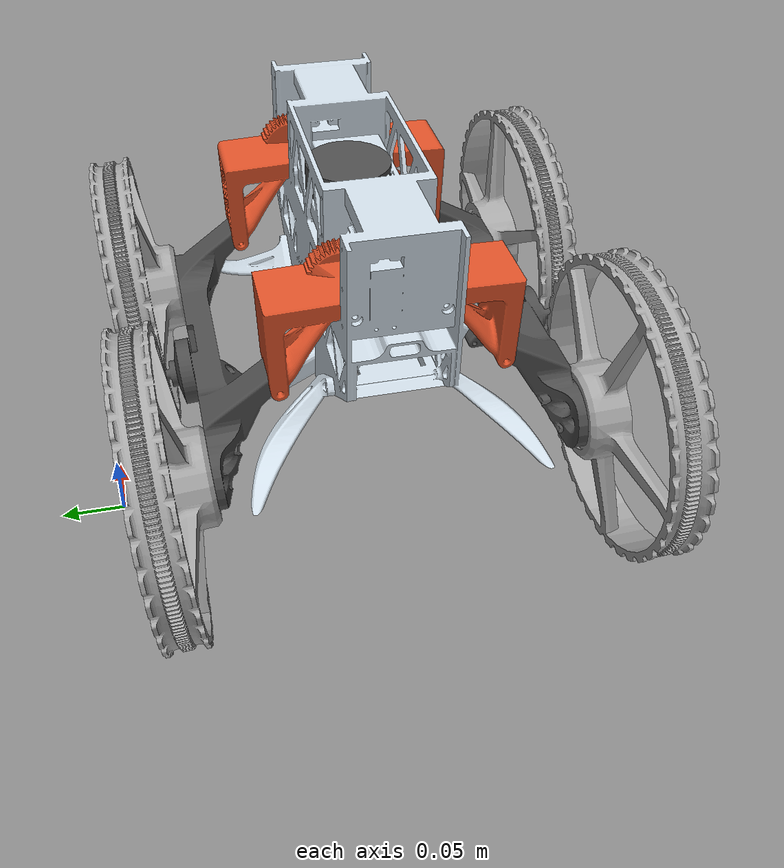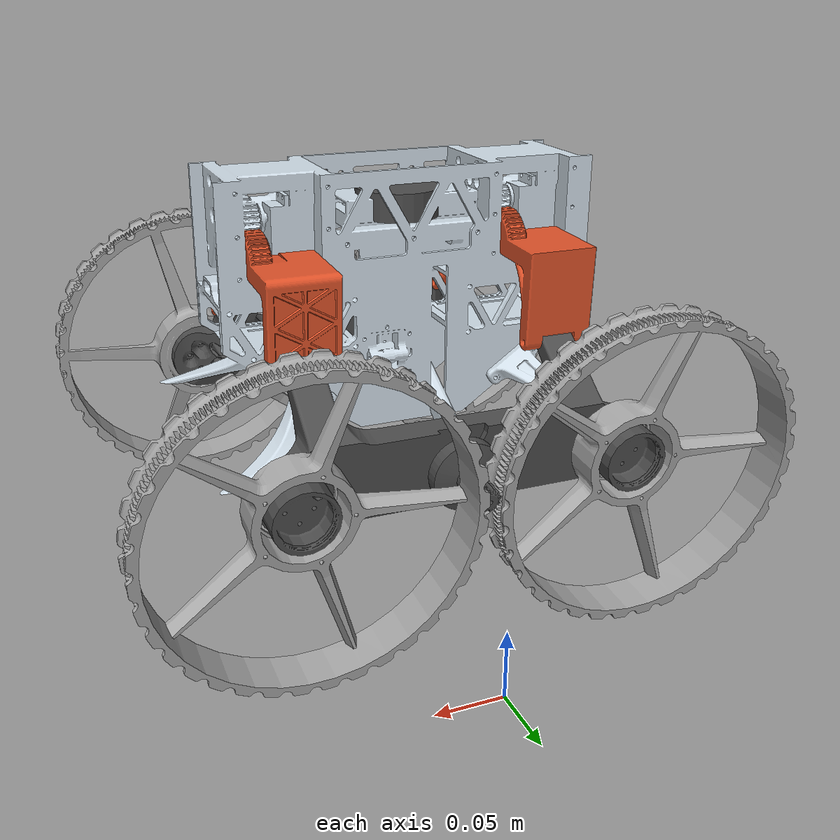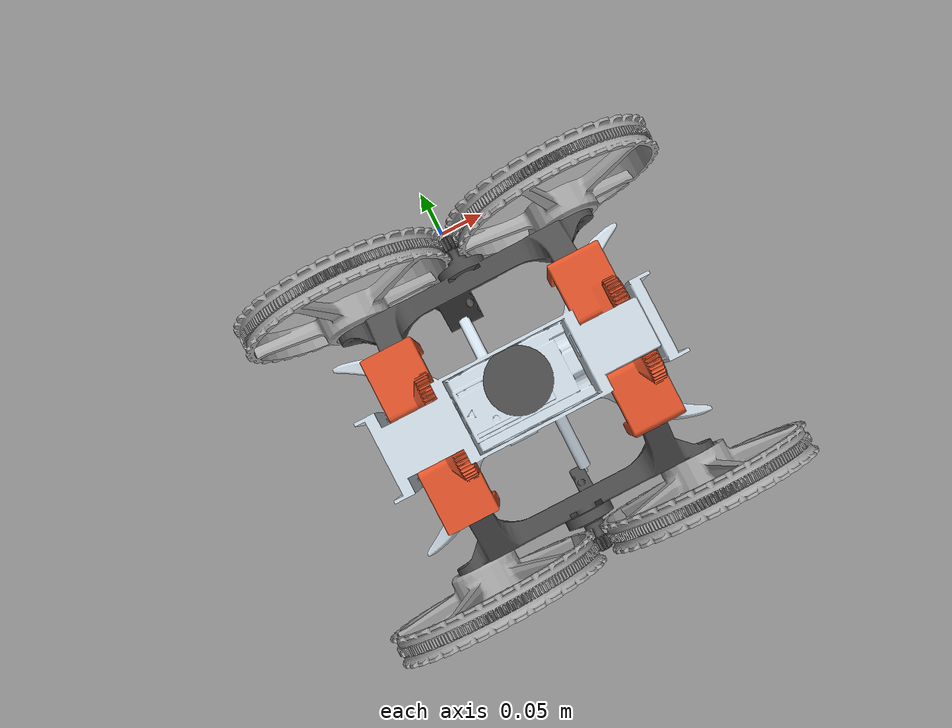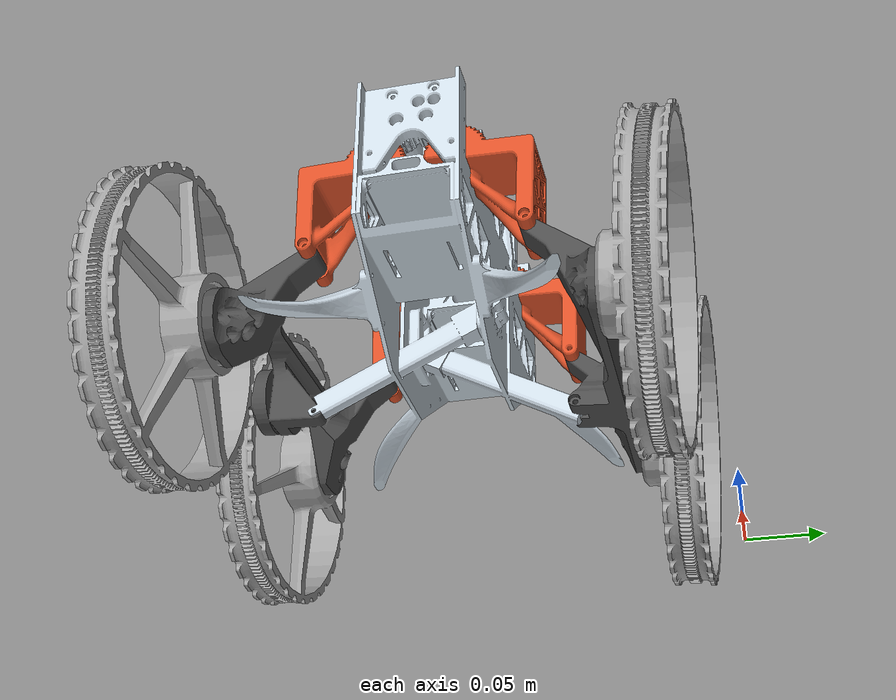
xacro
<?xml version="1.0"?>
<robot xmlns:xacro="http://ros.org/wiki/xacro" name="drobot">

  <xacro:include filename="$(find drobot_description)/urdf/gazebo.xacro"/>

  <xacro:arg name="use_sim" default="true"/>
  <xacro:arg name="use_ros2_control" default="true"/>

  <!-- ==================== MATERIALS ==================== -->
  <material name="base_color"><color rgba="0.81 0.86 0.90 1"/></material>
  <material name="arm_color"><color rgba="0.87 0.32 0.16 1"/></material>
  <material name="frame_color"><color rgba="0.30 0.30 0.30 1"/></material>
  <material name="wheel_color"><color rgba="0.65 0.65 0.65 1"/></material>

  <!-- ==================== BASE ==================== -->
  <link name="base_footprint"/>

  <joint name="base_footprint_joint" type="fixed">
    <parent link="base_footprint"/>
    <child link="base_link"/>
    <!-- z offset: base_footprint(지면)에서 base_link까지 높이 -->
    <origin xyz="0 0 0.25" rpy="0 0 0"/>
  </joint>

  <link name="base_link">
    <inertial>
      <origin xyz="-0.0023939 -0.19657 -0.0067497" rpy="0 0 0"/>
      <mass value="0.89777"/>
      <inertia ixx="0.00089357" ixy="-7.3792e-08" ixz="-3.1542e-05"
               iyy="0.0017315" iyz="7.3533e-07" izz="0.0014439"/>
    </inertial>
    <visual>
      <origin xyz="0 0 0" rpy="0 0 0"/>
      <geometry>
        <mesh filename="package://drobot_description/meshes/base_link.STL"/>
      </geometry>
      <material name="base_color"/>
    </visual>
    <collision>
      <origin xyz="0 0 0" rpy="0 0 0"/>
      <geometry>
        <mesh filename="package://drobot_description/meshes/base_link.STL"/>
      </geometry>
    </collision>
  </link>

  <!-- ==================== LEFT FRONT ARM ==================== -->
  <!-- FIX: mass was 0, set to 0.05 with minimal inertia -->
  <link name="left_front_arm">
    <inertial>
      <origin xyz="-0.001 -0.21577 0.2403" rpy="0 0 0"/>
      <mass value="0.05"/>
      <inertia ixx="1e-04" ixy="0" ixz="0"
               iyy="1e-04" iyz="0" izz="1e-04"/>
    </inertial>
    <visual>
      <origin xyz="0 0 0" rpy="0 0 0"/>
      <geometry>
        <mesh filename="package://drobot_description/meshes/left_front_arm.STL"/>
      </geometry>
      <material name="arm_color"/>
    </visual>
  </link>

  <joint name="rev_lf_arm" type="revolute">
    <origin xyz="0.001 -0.22031 0.23615" rpy="-3.1225 0 0"/>
    <parent link="base_link"/>
    <child link="left_front_arm"/>
    <axis xyz="-1 0 0"/>
    <limit lower="0" upper="1.5708" effort="100" velocity="2.0"/>
    <dynamics damping="100.0" friction="1.0"/>
  </joint>

  <!-- ==================== LEFT SIDE FRAME ==================== -->
  <link name="left_side_frame">
    <inertial>
      <origin xyz="0.00014502 0.10634 0.33395" rpy="0 0 0"/>
      <mass value="0.27356"/>
      <inertia ixx="0.00017455" ixy="1.6016e-06" ixz="-1.7253e-06"
               iyy="0.0022493" iyz="-5.3889e-05" izz="0.0022114"/>
    </inertial>
    <visual>
      <origin xyz="0 0 0" rpy="0 0 0"/>
      <geometry>
        <mesh filename="package://drobot_description/meshes/left_side_frame.STL"/>
      </geometry>
      <material name="frame_color"/>
    </visual>
  </link>

  <joint name="fix_ls_frame" type="fixed">
    <origin xyz="0.0005 -0.01671 0.0040219" rpy="-0.058822 0 0"/>
    <parent link="left_front_arm"/>
    <child link="left_side_frame"/>
  </joint>

  <!-- ==================== LEFT FRONT WHEEL ==================== -->
  <link name="left_front_wheel">
    <inertial>
      <origin xyz="0 0 0" rpy="0 0 0"/>
      <mass value="0.17861"/>
      <inertia ixx="0.00061079" ixy="0" ixz="0"
               iyy="0.00061079" iyz="0" izz="0.0011712"/>
    </inertial>
    <visual>
      <origin xyz="0.11656 0 -0.024937" rpy="0 0 0"/>
      <geometry>
        <mesh filename="package://drobot_description/meshes/left_front_wheel.STL"/>
      </geometry>
      <material name="wheel_color"/>
    </visual>
    <collision>
      <origin xyz="0.11656 0 -0.024937" rpy="0 0 0"/>
      <geometry>
        <mesh filename="package://drobot_description/meshes/left_front_wheel.STL"/>
      </geometry>
    </collision>
  </link>

  <!-- FIX: axis flipped to 0,0,-1 so left wheels match right wheels in base_link frame -->
  <joint name="con_lf_wheel" type="continuous">
    <origin xyz="-0.11657 0.14106 0.34600" rpy="-1.5708 -1.2933 3.1416"/>
    <parent link="left_side_frame"/>
    <child link="left_front_wheel"/>
    <axis xyz="0 0 -1"/>
    <dynamics damping="0.1" friction="0.05"/>
  </joint>

  <!-- ==================== LEFT REAR WHEEL ==================== -->
  <link name="left_rear_wheel">
    <inertial>
      <origin xyz="0 0 0" rpy="0 0 0"/>
      <mass value="0.17645"/>
      <inertia ixx="0.00060815" ixy="0" ixz="0"
               iyy="0.00060815" iyz="0" izz="0.0011693"/>
    </inertial>
    <visual>
      <origin xyz="-0.11656 0 -0.024345" rpy="0 0 0"/>
      <geometry>
        <mesh filename="package://drobot_description/meshes/left_rear_wheel.STL"/>
      </geometry>
      <material name="wheel_color"/>
    </visual>
    <collision>
      <origin xyz="-0.11656 0 -0.024345" rpy="0 0 0"/>
      <geometry>
        <mesh filename="package://drobot_description/meshes/left_rear_wheel.STL"/>
      </geometry>
    </collision>
  </link>

  <!-- FIX: axis flipped to 0,0,-1 so left wheels match right wheels in base_link frame -->
  <joint name="con_lr_wheel" type="continuous">
    <origin xyz="0.11656 0.13965 0.34600" rpy="-1.5708 -1.3064 3.1416"/>
    <parent link="left_side_frame"/>
    <child link="left_rear_wheel"/>
    <axis xyz="0 0 -1"/>
    <dynamics damping="0.1" friction="0.05"/>
  </joint>

  <!-- ==================== LEFT REAR ARM ==================== -->
  <!-- FIX: mass was 0 -->
  <link name="left_rear_arm">
    <inertial>
      <origin xyz="0 0 0" rpy="0 0 0"/>
      <mass value="0.05"/>
      <inertia ixx="1e-04" ixy="0" ixz="0"
               iyy="1e-04" iyz="0" izz="1e-04"/>
    </inertial>
    <visual>
      <origin xyz="0 0 0" rpy="0 0 0"/>
      <geometry>
        <mesh filename="package://drobot_description/meshes/left_rear_arm.STL"/>
      </geometry>
      <material name="arm_color"/>
    </visual>
  </link>

  <joint name="rev_lr_arm" type="revolute">
    <origin xyz="0 0 0" rpy="1.5898 0 0"/>
    <parent link="base_link"/>
    <child link="left_rear_arm"/>
    <axis xyz="-1 0 0"/>
    <limit lower="0" upper="1.5708" effort="100" velocity="2.0"/>
    <dynamics damping="100.0" friction="1.0"/>
  </joint>

  <!-- ==================== RIGHT FRONT ARM ==================== -->
  <link name="right_front_arm">
    <inertial>
      <origin xyz="-0.09053 0.041004 0.15322" rpy="0 0 0"/>
      <mass value="0.090502"/>
      <inertia ixx="7.5491e-05" ixy="6.1386e-06" ixz="-3.9205e-06"
               iyy="5.5454e-05" iyz="2.2145e-05" izz="5.7986e-05"/>
    </inertial>
    <visual>
      <origin xyz="0 0 0" rpy="0 0 0"/>
      <geometry>
        <mesh filename="package://drobot_description/meshes/right_front_arm.STL"/>
      </geometry>
      <material name="arm_color"/>
    </visual>
  </link>

  <joint name="rev_rf_arm" type="revolute">
    <origin xyz="0.001 -0.18333 -0.1565" rpy="-0.037984 0 0"/>
    <parent link="base_link"/>
    <child link="right_front_arm"/>
    <axis xyz="-1 0 0"/>
    <limit lower="0" upper="1.5708" effort="100" velocity="2.0"/>
    <dynamics damping="100.0" friction="1.0"/>
  </joint>

  <!-- ==================== RIGHT SIDE FRAME ==================== -->
  <link name="right_side_frame">
    <inertial>
      <origin xyz="-0.0019373 0.0087805 0.060878" rpy="0 0 0"/>
      <mass value="0.337"/>
      <inertia ixx="0.00020711" ixy="-1.114e-05" ixz="6.2261e-06"
               iyy="0.0023637" iyz="-5.3391e-05" izz="0.0024255"/>
    </inertial>
    <visual>
      <origin xyz="0 0 0" rpy="0 0 0"/>
      <geometry>
        <mesh filename="package://drobot_description/meshes/right_side_frame.STL"/>
      </geometry>
      <material name="frame_color"/>
    </visual>
  </link>

  <joint name="fix_rs_frame" type="fixed">
    <origin xyz="0.0005 0.16431 0.042431" rpy="1.5276 0 0"/>
    <parent link="right_front_arm"/>
    <child link="right_side_frame"/>
  </joint>

  <!-- ==================== RIGHT FRONT WHEEL ==================== -->
  <link name="right_front_wheel">
    <inertial>
      <origin xyz="0 0 0" rpy="0 0 0"/>
      <mass value="0.15447"/>
      <inertia ixx="0.00060097" ixy="0" ixz="0"
               iyy="0.00060097" iyz="0" izz="0.0011545"/>
    </inertial>
    <visual>
      <origin xyz="0.11656 0 -0.023287" rpy="0 0 0"/>
      <geometry>
        <mesh filename="package://drobot_description/meshes/right_front_wheel.STL"/>
      </geometry>
      <material name="wheel_color"/>
    </visual>
    <collision>
      <origin xyz="0.11656 0 -0.023287" rpy="0 0 0"/>
      <geometry>
        <mesh filename="package://drobot_description/meshes/right_front_wheel.STL"/>
      </geometry>
    </collision>
  </link>

  <joint name="con_rf_wheel" type="continuous">
    <origin xyz="-0.11656 0.0 0.02429" rpy="0 0 -3.1268"/>
    <parent link="right_side_frame"/>
    <child link="right_front_wheel"/>
    <axis xyz="0 0 1"/>
    <dynamics damping="0.1" friction="0.05"/>
  </joint>

  <!-- ==================== RIGHT REAR WHEEL ==================== -->
  <link name="right_rear_wheel">
    <inertial>
      <origin xyz="0 0 0" rpy="0 0 0"/>
      <mass value="0.15447"/>
      <inertia ixx="0.00060097" ixy="0" ixz="0"
               iyy="0.00060097" iyz="0" izz="0.0011545"/>
    </inertial>
    <visual>
      <origin xyz="0.11655 -0.0017243 -0.024287" rpy="0 0 0"/>
      <geometry>
        <mesh filename="package://drobot_description/meshes/right_rear_wheel.STL"/>
      </geometry>
      <material name="wheel_color"/>
    </visual>
    <collision>
      <origin xyz="0.11655 -0.0017243 -0.024287" rpy="0 0 0"/>
      <geometry>
        <mesh filename="package://drobot_description/meshes/right_rear_wheel.STL"/>
      </geometry>
    </collision>
  </link>

  <!-- NOTE: con_rr_wheel origin 0,0,0 from SW2URDF - may need adjustment -->
  <joint name="con_rr_wheel" type="continuous">
    <origin xyz="0.11656 0.0 0.02429" rpy="0 0 -3.1268"/>
    <parent link="right_side_frame"/>
    <child link="right_rear_wheel"/>
    <axis xyz="0 0 1"/>
    <dynamics damping="0.1" friction="0.05"/>
  </joint>

  <!-- ==================== RIGHT REAR ARM ==================== -->
  <!-- FIX: mass was 0 -->
  <link name="right_rear_arm">
    <inertial>
      <origin xyz="0 0 0" rpy="0 0 0"/>
      <mass value="0.05"/>
      <inertia ixx="1e-04" ixy="0" ixz="0"
               iyy="1e-04" iyz="0" izz="1e-04"/>
    </inertial>
    <visual>
      <origin xyz="0 0 0" rpy="0 0 0"/>
      <geometry>
        <mesh filename="package://drobot_description/meshes/right_rear_arm.STL"/>
      </geometry>
      <material name="arm_color"/>
    </visual>
  </link>

  <joint name="rev_rr_arm" type="revolute">
    <origin xyz="0 0 0" rpy="1.5328 0 0"/>
    <parent link="base_link"/>
    <child link="right_rear_arm"/>
    <axis xyz="-1 0 0"/>
    <limit lower="0" upper="1.5708" effort="100" velocity="2.0"/>
    <dynamics damping="100.0" friction="1.0"/>
  </joint>

  <!-- ==================== LIDAR ==================== -->
  <link name="lidar_link">
    <inertial>
      <origin xyz="0 0 0" rpy="0 0 0"/>
      <mass value="0.01"/>
      <inertia ixx="1e-06" ixy="0" ixz="0" iyy="1e-06" iyz="0" izz="1e-06"/>
    </inertial>
    <visual>
      <origin xyz="0 0 0" rpy="0 0 0"/>
      <geometry>
        <cylinder radius="0.03" length="0.02"/>
      </geometry>
      <material name="frame_color"/>
    </visual>
  </link>

  <joint name="lidar_joint" type="fixed">
    <parent link="base_link"/>
    <child link="lidar_link"/>
    <origin xyz="0 -0.19 0.04" rpy="0 0 0"/>
  </joint>

  <!-- ==================== IMU ==================== -->
  <link name="imu_link">
    <inertial>
      <origin xyz="0 0 0" rpy="0 0 0"/>
      <mass value="0.01"/>
      <inertia ixx="1e-06" ixy="0" ixz="0" iyy="1e-06" iyz="0" izz="1e-06"/>
    </inertial>
  </link>

  <joint name="imu_joint" type="fixed">
    <parent link="base_link"/>
    <child link="imu_link"/>
    <origin xyz="0 -0.19 0.02" rpy="0 0 0"/>
  </joint>

  <!-- ==================== ROS2 CONTROL ==================== -->
  <xacro:if value="$(arg use_ros2_control)">
    <xacro:include filename="$(find drobot_description)/urdf/ros2_control.xacro"/>
  </xacro:if>

</robot>
